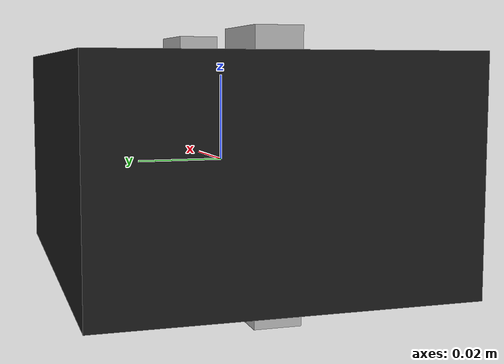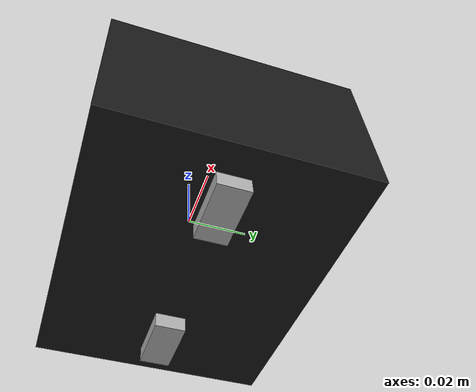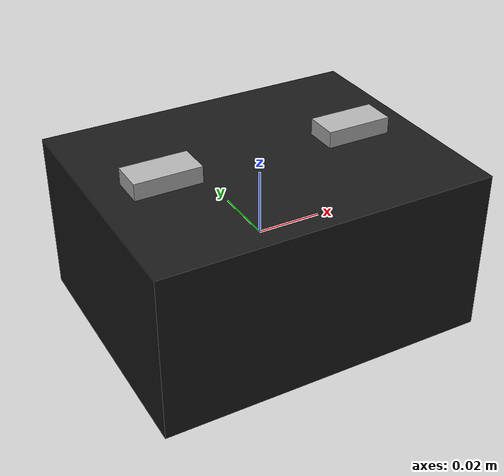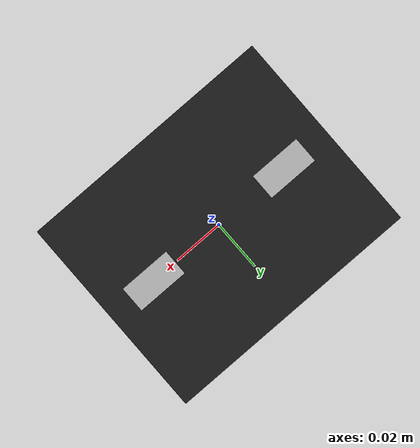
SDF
<?xml version="1.0"?>
<sdf version="1.9">
  <model name="schunk_wsg_50">
    <link name="body">
      <visual name="gripper_body">
        <geometry>
          <box>
            <size>0.1 0.08 0.05</size>
          </box>
        </geometry>
        <material>
          <diffuse>0.1 0.1 0.1 1.0</diffuse>
        </material>
      </visual>
    </link>

    <link name="left_finger">
      <visual name="left_finger_visual">
        <geometry>
          <box>
            <size>0.02 0.01 0.06</size>
          </box>
        </geometry>
        <material>
          <diffuse>0.7 0.7 0.7 1.0</diffuse>
        </material>
      </visual>
      <pose>-0.03 0 0 0 0 0</pose>
    </link>

    <link name="right_finger">
      <visual name="right_finger_visual">
        <geometry>
          <box>
            <size>0.02 0.01 0.06</size>
          </box>
        </geometry>
        <material>
          <diffuse>0.7 0.7 0.7 1.0</diffuse>
        </material>
      </visual>
      <pose>0.03 0 0 0 0 0</pose>
    </link>

    <joint name="left_finger_joint" type="prismatic">
      <parent>body</parent>
      <child>left_finger</child>
      <axis>
        <xyz>-1 0 0</xyz>
        <limit>
          <lower>-0.05</lower>
          <upper>0</upper>
        </limit>
      </axis>
    </joint>

    <joint name="right_finger_joint" type="prismatic">
      <parent>body</parent>
      <child>right_finger</child>
      <axis>
        <xyz>1 0 0</xyz>
        <limit>
          <lower>0</lower>
          <upper>0.05</upper>
        </limit>
      </axis>
    </joint>
  </model>
</sdf>
